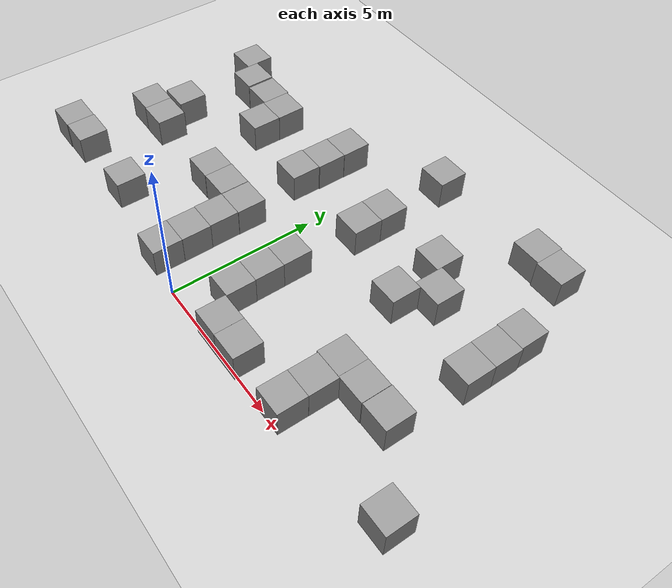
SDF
<sdf version="1.7">
 <world name="default">
  <model name="ground_plane">
   <static>1</static>
   <link name="link">
    <collision name="collision">
     <geometry><plane><normal>0 0 1</normal><size>100 100</size></plane></geometry>
     <surface>
      <contact><collide_bitmask>65535</collide_bitmask></contact>
      <friction><ode><mu>100</mu><mu2>50</mu2></ode></friction>
     </surface>
    </collision>
    <visual name="visual">
     <cast_shadows>0</cast_shadows>
     <geometry><plane><normal>0 0 1</normal><size>100 100</size></plane></geometry>
     <material>
      <script><uri>file://media/materials/scripts/gazebo.material</uri><name>Gazebo/Grey</name></script>
     </material>
    </visual>
   </link>
  </model>
  <model name="unit_box">
   <pose>-1.36003 0.443437 0.5 0 -0 -0.000708</pose>
   <link name="link">
    <inertial>
     <mass>1</mass>
     <inertia>
      <ixx>0.166667</ixx>
      <ixy>0</ixy>
      <ixz>0</ixz>
      <iyy>0.166667</iyy>
      <iyz>0</iyz>
      <izz>0.166667</izz>
     </inertia>
    </inertial>
    <collision name="collision"><geometry><box><size>1 1 1</size></box></geometry></collision>
    <visual name="visual">
     <geometry><box><size>1 1 1</size></box></geometry>
     <material>
      <script><name>Gazebo/Grey</name><uri>file://media/materials/scripts/gazebo.material</uri></script>
     </material>
    </visual>
   </link>
  </model>
  <model name="unit_box_0">
   <pose>-1.35693 1.44351 0.5 0 0 -0.00082</pose>
   <link name="link">
    <inertial>
     <mass>1</mass>
     <inertia>
      <ixx>0.166667</ixx>
      <ixy>0</ixy>
      <ixz>0</ixz>
      <iyy>0.166667</iyy>
      <iyz>0</iyz>
      <izz>0.166667</izz>
     </inertia>
    </inertial>
    <collision name="collision"><geometry><box><size>1 1 1</size></box></geometry></collision>
    <visual name="visual">
     <geometry><box><size>1 1 1</size></box></geometry>
     <material>
      <script><name>Gazebo/Grey</name><uri>file://media/materials/scripts/gazebo.material</uri></script>
     </material>
    </visual>
   </link>
  </model>
  <model name="unit_box_2">
   <pose>1.23113 1.42092 0.5 0 -0 0.002156</pose>
   <link name="link">
    <inertial>
     <mass>1</mass>
     <inertia>
      <ixx>0.166667</ixx>
      <ixy>0</ixy>
      <ixz>0</ixz>
      <iyy>0.166667</iyy>
      <iyz>0</iyz>
      <izz>0.166667</izz>
     </inertia>
    </inertial>
    <collision name="collision"><geometry><box><size>1 1 1</size></box></geometry></collision>
    <visual name="visual">
     <geometry><box><size>1 1 1</size></box></geometry>
     <material>
      <script><name>Gazebo/Grey</name><uri>file://media/materials/scripts/gazebo.material</uri></script>
     </material>
    </visual>
   </link>
  </model>
  <model name="unit_box_3">
   <pose>1.22122 2.42103 0.5 0 -0 0.002274</pose>
   <link name="link">
    <inertial>
     <mass>1</mass>
     <inertia>
      <ixx>0.166667</ixx>
      <ixy>0</ixy>
      <ixz>0</ixz>
      <iyy>0.166667</iyy>
      <iyz>0</iyz>
      <izz>0.166667</izz>
     </inertia>
    </inertial>
    <collision name="collision"><geometry><box><size>1 1 1</size></box></geometry></collision>
    <visual name="visual">
     <geometry><box><size>1 1 1</size></box></geometry>
     <material>
      <script><name>Gazebo/Grey</name><uri>file://media/materials/scripts/gazebo.material</uri></script>
     </material>
    </visual>
   </link>
  </model>
  <model name="unit_box_4">
   <pose>-1.37367 2.44354 0.5 0 0 -0.000802</pose>
   <link name="link">
    <inertial>
     <mass>1</mass>
     <inertia>
      <ixx>0.166667</ixx>
      <ixy>0</ixy>
      <ixz>0</ixz>
      <iyy>0.166667</iyy>
      <iyz>0</iyz>
      <izz>0.166667</izz>
     </inertia>
    </inertial>
    <collision name="collision"><geometry><box><size>1 1 1</size></box></geometry></collision>
    <visual name="visual">
     <geometry><box><size>1 1 1</size></box></geometry>
     <material>
      <script><name>Gazebo/Grey</name><uri>file://media/materials/scripts/gazebo.material</uri></script>
     </material>
    </visual>
   </link>
  </model>
  <model name="unit_box_5">
   <pose>-1.36173 3.44395 0.5 0 -0 3.4e-05</pose>
   <link name="link">
    <inertial>
     <mass>1</mass>
     <inertia>
      <ixx>0.166667</ixx>
      <ixy>0</ixy>
      <ixz>0</ixz>
      <iyy>0.166667</iyy>
      <iyz>0</iyz>
      <izz>0.166667</izz>
     </inertia>
    </inertial>
    <collision name="collision"><geometry><box><size>1 1 1</size></box></geometry></collision>
    <visual name="visual">
     <geometry><box><size>1 1 1</size></box></geometry>
     <material>
      <script><name>Gazebo/Grey</name><uri>file://media/materials/scripts/gazebo.material</uri></script>
     </material>
    </visual>
   </link>
  </model>
  <model name="unit_box_6">
   <pose>1.21714 3.42107 0.5 0 -0 0.002343</pose>
   <link name="link">
    <inertial>
     <mass>1</mass>
     <inertia>
      <ixx>0.166667</ixx>
      <ixy>0</ixy>
      <ixz>0</ixz>
      <iyy>0.166667</iyy>
      <iyz>0</iyz>
      <izz>0.166667</izz>
     </inertia>
    </inertial>
    <collision name="collision"><geometry><box><size>1 1 1</size></box></geometry></collision>
    <visual name="visual">
     <geometry><box><size>1 1 1</size></box></geometry>
     <material>
      <script><name>Gazebo/Grey</name><uri>file://media/materials/scripts/gazebo.material</uri></script>
     </material>
    </visual>
   </link>
  </model>
  <model name="unit_box_7">
   <pose>-2.37307 3.44102 0.5 0 0 -0.00042</pose>
   <link name="link">
    <inertial>
     <mass>1</mass>
     <inertia>
      <ixx>0.166667</ixx>
      <ixy>0</ixy>
      <ixz>0</ixz>
      <iyy>0.166667</iyy>
      <iyz>0</iyz>
      <izz>0.166667</izz>
     </inertia>
    </inertial>
    <collision name="collision"><geometry><box><size>1 1 1</size></box></geometry></collision>
    <visual name="visual">
     <geometry><box><size>1 1 1</size></box></geometry>
     <material>
      <script><name>Gazebo/Grey</name><uri>file://media/materials/scripts/gazebo.material</uri></script>
     </material>
    </visual>
   </link>
  </model>
  <model name="unit_box_8">
   <pose>-3.37308 3.4342 0.5 0 0 -0.000421</pose>
   <link name="link">
    <inertial>
     <mass>1</mass>
     <inertia>
      <ixx>0.166667</ixx>
      <ixy>0</ixy>
      <ixz>0</ixz>
      <iyy>0.166667</iyy>
      <iyz>0</iyz>
      <izz>0.166667</izz>
     </inertia>
    </inertial>
    <collision name="collision"><geometry><box><size>1 1 1</size></box></geometry></collision>
    <visual name="visual">
     <geometry><box><size>1 1 1</size></box></geometry>
     <material>
      <script><name>Gazebo/Grey</name><uri>file://media/materials/scripts/gazebo.material</uri></script>
     </material>
    </visual>
   </link>
  </model>
  <model name="unit_box_9">
   <pose>-4.56011 0.881902 0.5 0 0 -3.6e-05</pose>
   <link name="link">
    <inertial>
     <mass>1</mass>
     <inertia>
      <ixx>0.166667</ixx>
      <ixy>0</ixy>
      <ixz>0</ixz>
      <iyy>0.166667</iyy>
      <iyz>0</iyz>
      <izz>0.166667</izz>
     </inertia>
    </inertial>
    <collision name="collision"><geometry><box><size>1 1 1</size></box></geometry></collision>
    <visual name="visual">
     <geometry><box><size>1 1 1</size></box></geometry>
     <material>
      <script><name>Gazebo/Grey</name><uri>file://media/materials/scripts/gazebo.material</uri></script>
     </material>
    </visual>
   </link>
  </model>
  <model name="unit_box_17">
   <pose>2.18499 0.414407 0.5 0 -0 0.000729</pose>
   <link name="link">
    <inertial>
     <mass>1</mass>
     <inertia>
      <ixx>0.166667</ixx>
      <ixy>0</ixy>
      <ixz>0</ixz>
      <iyy>0.166667</iyy>
      <iyz>0</iyz>
      <izz>0.166667</izz>
     </inertia>
    </inertial>
    <collision name="collision"><geometry><box><size>1 1 1</size></box></geometry></collision>
    <visual name="visual">
     <geometry><box><size>1 1 1</size></box></geometry>
     <material>
      <script><name>Gazebo/Grey</name><uri>file://media/materials/scripts/gazebo.material</uri></script>
     </material>
    </visual>
   </link>
  </model>
  <model name="unit_box_18">
   <pose>3.18521 0.416601 0.5 0 -0 0.000765</pose>
   <link name="link">
    <inertial>
     <mass>1</mass>
     <inertia>
      <ixx>0.166667</ixx>
      <ixy>0</ixy>
      <ixz>0</ixz>
      <iyy>0.166667</iyy>
      <iyz>0</iyz>
      <izz>0.166667</izz>
     </inertia>
    </inertial>
    <collision name="collision"><geometry><box><size>1 1 1</size></box></geometry></collision>
    <visual name="visual">
     <geometry><box><size>1 1 1</size></box></geometry>
     <material>
      <script><name>Gazebo/Grey</name><uri>file://media/materials/scripts/gazebo.material</uri></script>
     </material>
    </visual>
   </link>
  </model>
  <model name="unit_box_19">
   <pose>5.28777 0.441785 0.5 -0 -0 -0.001052</pose>
   <link name="link">
    <inertial>
     <mass>1</mass>
     <inertia>
      <ixx>0.166667</ixx>
      <ixy>0</ixy>
      <ixz>0</ixz>
      <iyy>0.166667</iyy>
      <iyz>0</iyz>
      <izz>0.166667</izz>
     </inertia>
    </inertial>
    <collision name="collision"><geometry><box><size>1 1 1</size></box></geometry></collision>
    <visual name="visual">
     <geometry><box><size>1 1 1</size></box></geometry>
     <material>
      <script><name>Gazebo/Grey</name><uri>file://media/materials/scripts/gazebo.material</uri></script>
     </material>
    </visual>
   </link>
  </model>
  <model name="unit_box_20">
   <pose>5.29242 1.44192 0.5 0 -0 -0.001317</pose>
   <link name="link">
    <inertial>
     <mass>1</mass>
     <inertia>
      <ixx>0.166667</ixx>
      <ixy>0</ixy>
      <ixz>0</ixz>
      <iyy>0.166667</iyy>
      <iyz>0</iyz>
      <izz>0.166667</izz>
     </inertia>
    </inertial>
    <collision name="collision"><geometry><box><size>1 1 1</size></box></geometry></collision>
    <visual name="visual">
     <geometry><box><size>1 1 1</size></box></geometry>
     <material>
      <script><name>Gazebo/Grey</name><uri>file://media/materials/scripts/gazebo.material</uri></script>
     </material>
    </visual>
   </link>
  </model>
  <model name="unit_box_21">
   <pose>5.2392 2.44258 0.5 0 0 -0.000379</pose>
   <link name="link">
    <inertial>
     <mass>1</mass>
     <inertia>
      <ixx>0.166667</ixx>
      <ixy>0</ixy>
      <ixz>0</ixz>
      <iyy>0.166667</iyy>
      <iyz>0</iyz>
      <izz>0.166667</izz>
     </inertia>
    </inertial>
    <collision name="collision"><geometry><box><size>1 1 1</size></box></geometry></collision>
    <visual name="visual">
     <geometry><box><size>1 1 1</size></box></geometry>
     <material>
      <script><name>Gazebo/Grey</name><uri>file://media/materials/scripts/gazebo.material</uri></script>
     </material>
    </visual>
   </link>
  </model>
  <model name="unit_box_25">
   <pose>1.43258 5.91446 0.5 0 0 -0.000102</pose>
   <link name="link">
    <inertial>
     <mass>1</mass>
     <inertia>
      <ixx>0.166667</ixx>
      <ixy>0</ixy>
      <ixz>0</ixz>
      <iyy>0.166667</iyy>
      <iyz>0</iyz>
      <izz>0.166667</izz>
     </inertia>
    </inertial>
    <collision name="collision"><geometry><box><size>1 1 1</size></box></geometry></collision>
    <visual name="visual">
     <geometry><box><size>1 1 1</size></box></geometry>
     <material>
      <script><name>Gazebo/Grey</name><uri>file://media/materials/scripts/gazebo.material</uri></script>
     </material>
    </visual>
   </link>
  </model>
  <model name="unit_box_26">
   <pose>1.43557 6.91448 0.5 0 -0 -0.000102</pose>
   <link name="link">
    <inertial>
     <mass>1</mass>
     <inertia>
      <ixx>0.166667</ixx>
      <ixy>0</ixy>
      <ixz>0</ixz>
      <iyy>0.166667</iyy>
      <iyz>0</iyz>
      <izz>0.166667</izz>
     </inertia>
    </inertial>
    <collision name="collision"><geometry><box><size>1 1 1</size></box></geometry></collision>
    <visual name="visual">
     <geometry><box><size>1 1 1</size></box></geometry>
     <material>
      <script><name>Gazebo/Grey</name><uri>file://media/materials/scripts/gazebo.material</uri></script>
     </material>
    </visual>
   </link>
  </model>
  <model name="unit_box_27">
   <pose>6.23935 2.441 0.5 0 -0 -0.000676</pose>
   <link name="link">
    <inertial>
     <mass>1</mass>
     <inertia>
      <ixx>0.166667</ixx>
      <ixy>0</ixy>
      <ixz>0</ixz>
      <iyy>0.166667</iyy>
      <iyz>0</iyz>
      <izz>0.166667</izz>
     </inertia>
    </inertial>
    <collision name="collision"><geometry><box><size>1 1 1</size></box></geometry></collision>
    <visual name="visual">
     <geometry><box><size>1 1 1</size></box></geometry>
     <material>
      <script><name>Gazebo/Grey</name><uri>file://media/materials/scripts/gazebo.material</uri></script>
     </material>
    </visual>
   </link>
  </model>
  <model name="unit_box_31">
   <pose>-7.22315 0.837391 0.5 0 -0 0.000209</pose>
   <link name="link">
    <inertial>
     <mass>1</mass>
     <inertia>
      <ixx>0.166667</ixx>
      <ixy>0</ixy>
      <ixz>0</ixz>
      <iyy>0.166667</iyy>
      <iyz>0</iyz>
      <izz>0.166667</izz>
     </inertia>
    </inertial>
    <collision name="collision"><geometry><box><size>1 1 1</size></box></geometry></collision>
    <visual name="visual">
     <geometry><box><size>1 1 1</size></box></geometry>
     <material>
      <script><name>Gazebo/Grey</name><uri>file://media/materials/scripts/gazebo.material</uri></script>
     </material>
    </visual>
   </link>
  </model>
  <model name="unit_box_32">
   <pose>-8.22316 0.820551 0.5 0 -0 0.000208</pose>
   <link name="link">
    <inertial>
     <mass>1</mass>
     <inertia>
      <ixx>0.166667</ixx>
      <ixy>0</ixy>
      <ixz>0</ixz>
      <iyy>0.166667</iyy>
      <iyz>0</iyz>
      <izz>0.166667</izz>
     </inertia>
    </inertial>
    <collision name="collision"><geometry><box><size>1 1 1</size></box></geometry></collision>
    <visual name="visual">
     <geometry><box><size>1 1 1</size></box></geometry>
     <material>
      <script><name>Gazebo/Grey</name><uri>file://media/materials/scripts/gazebo.material</uri></script>
     </material>
    </visual>
   </link>
  </model>
  <model name="unit_box_33">
   <pose>-4.39555 6.00856 0.5 0 0 -0.000284</pose>
   <link name="link">
    <inertial>
     <mass>1</mass>
     <inertia>
      <ixx>0.166667</ixx>
      <ixy>0</ixy>
      <ixz>0</ixz>
      <iyy>0.166667</iyy>
      <iyz>0</iyz>
      <izz>0.166667</izz>
     </inertia>
    </inertial>
    <collision name="collision"><geometry><box><size>1 1 1</size></box></geometry></collision>
    <visual name="visual">
     <geometry><box><size>1 1 1</size></box></geometry>
     <material>
      <script><name>Gazebo/Grey</name><uri>file://media/materials/scripts/gazebo.material</uri></script>
     </material>
    </visual>
   </link>
  </model>
  <model name="unit_box_34">
   <pose>-4.38813 7.00859 0.5 0 -0 -0.000299</pose>
   <link name="link">
    <inertial>
     <mass>1</mass>
     <inertia>
      <ixx>0.166667</ixx>
      <ixy>0</ixy>
      <ixz>0</ixz>
      <iyy>0.166667</iyy>
      <iyz>0</iyz>
      <izz>0.166667</izz>
     </inertia>
    </inertial>
    <collision name="collision"><geometry><box><size>1 1 1</size></box></geometry></collision>
    <visual name="visual">
     <geometry><box><size>1 1 1</size></box></geometry>
     <material>
      <script><name>Gazebo/Grey</name><uri>file://media/materials/scripts/gazebo.material</uri></script>
     </material>
    </visual>
   </link>
  </model>
  <model name="unit_box_35">
   <pose>-6.5052 3.45741 0.5 0 0 -0.000661</pose>
   <link name="link">
    <inertial>
     <mass>1</mass>
     <inertia>
      <ixx>0.166667</ixx>
      <ixy>0</ixy>
      <ixz>0</ixz>
      <iyy>0.166667</iyy>
      <iyz>0</iyz>
      <izz>0.166667</izz>
     </inertia>
    </inertial>
    <collision name="collision"><geometry><box><size>1 1 1</size></box></geometry></collision>
    <visual name="visual">
     <geometry><box><size>1 1 1</size></box></geometry>
     <material>
      <script><name>Gazebo/Grey</name><uri>file://media/materials/scripts/gazebo.material</uri></script>
     </material>
    </visual>
   </link>
  </model>
  <model name="unit_box_36">
   <pose>-7.50519 3.47135 0.5 -0 -0 -0.000661</pose>
   <link name="link">
    <inertial>
     <mass>1</mass>
     <inertia>
      <ixx>0.166667</ixx>
      <ixy>0</ixy>
      <ixz>0</ixz>
      <iyy>0.166667</iyy>
      <iyz>0</iyz>
      <izz>0.166667</izz>
     </inertia>
    </inertial>
    <collision name="collision"><geometry><box><size>1 1 1</size></box></geometry></collision>
    <visual name="visual">
     <geometry><box><size>1 1 1</size></box></geometry>
     <material>
      <script><name>Gazebo/Grey</name><uri>file://media/materials/scripts/gazebo.material</uri></script>
     </material>
    </visual>
   </link>
  </model>
  <model name="unit_box_37">
   <pose>-6.95101 4.55843 0.5 0 -0 0</pose>
   <link name="link">
    <inertial>
     <mass>1</mass>
     <inertia>
      <ixx>0.166667</ixx>
      <ixy>0</ixy>
      <ixz>0</ixz>
      <iyy>0.166667</iyy>
      <iyz>0</iyz>
      <izz>0.166667</izz>
     </inertia>
    </inertial>
    <collision name="collision"><geometry><box><size>1 1 1</size></box></geometry></collision>
    <visual name="visual">
     <geometry><box><size>1 1 1</size></box></geometry>
     <material>
      <script><name>Gazebo/Grey</name><uri>file://media/materials/scripts/gazebo.material</uri></script>
     </material>
    </visual>
   </link>
  </model>
  <model name="unit_box_38">
   <pose>-1.61922 5.72429 0.5 0 -0 -0.000993</pose>
   <link name="link">
    <inertial>
     <mass>1</mass>
     <inertia>
      <ixx>0.166667</ixx>
      <ixy>0</ixy>
      <ixz>0</ixz>
      <iyy>0.166667</iyy>
      <iyz>0</iyz>
      <izz>0.166667</izz>
     </inertia>
    </inertial>
    <collision name="collision"><geometry><box><size>1 1 1</size></box></geometry></collision>
    <visual name="visual">
     <geometry><box><size>1 1 1</size></box></geometry>
     <material>
      <script><name>Gazebo/Grey</name><uri>file://media/materials/scripts/gazebo.material</uri></script>
     </material>
    </visual>
   </link>
  </model>
  <model name="unit_box_39">
   <pose>-1.58965 6.7246 0.499995 0 -1e-05 -0.000437</pose>
   <link name="link">
    <inertial>
     <mass>1</mass>
     <inertia>
      <ixx>0.166667</ixx>
      <ixy>0</ixy>
      <ixz>0</ixz>
      <iyy>0.166667</iyy>
      <iyz>0</iyz>
      <izz>0.166667</izz>
     </inertia>
    </inertial>
    <collision name="collision"><geometry><box><size>1 1 1</size></box></geometry></collision>
    <visual name="visual">
     <geometry><box><size>1 1 1</size></box></geometry>
     <material>
      <script><name>Gazebo/Grey</name><uri>file://media/materials/scripts/gazebo.material</uri></script>
     </material>
    </visual>
   </link>
  </model>
  <model name="unit_box_40">
   <pose>-1.58047 7.7246 0.5 0 -0 -0.000435</pose>
   <link name="link">
    <inertial>
     <mass>1</mass>
     <inertia>
      <ixx>0.166667</ixx>
      <ixy>0</ixy>
      <ixz>0</ixz>
      <iyy>0.166667</iyy>
      <iyz>0</iyz>
      <izz>0.166667</izz>
     </inertia>
    </inertial>
    <collision name="collision"><geometry><box><size>1 1 1</size></box></geometry></collision>
    <visual name="visual">
     <geometry><box><size>1 1 1</size></box></geometry>
     <material>
      <script><name>Gazebo/Grey</name><uri>file://media/materials/scripts/gazebo.material</uri></script>
     </material>
    </visual>
   </link>
  </model>
  <model name="unit_box_56">
   <pose>-5.38818 7.05248 0.5 0 0 -0.000436</pose>
   <link name="link">
    <inertial>
     <mass>1</mass>
     <inertia>
      <ixx>0.166667</ixx>
      <ixy>0</ixy>
      <ixz>0</ixz>
      <iyy>0.166667</iyy>
      <iyz>0</iyz>
      <izz>0.166667</izz>
     </inertia>
    </inertial>
    <collision name="collision"><geometry><box><size>1 1 1</size></box></geometry></collision>
    <visual name="visual">
     <geometry><box><size>1 1 1</size></box></geometry>
     <material>
      <script><name>Gazebo/Grey</name><uri>file://media/materials/scripts/gazebo.material</uri></script>
     </material>
    </visual>
   </link>
  </model>
  <model name="unit_box_57">
   <pose>-6.44933 7.08314 0.5 0 -0 -0.001087</pose>
   <link name="link">
    <inertial>
     <mass>1</mass>
     <inertia>
      <ixx>0.166667</ixx>
      <ixy>0</ixy>
      <ixz>0</ixz>
      <iyy>0.166667</iyy>
      <iyz>0</iyz>
      <izz>0.166667</izz>
     </inertia>
    </inertial>
    <collision name="collision"><geometry><box><size>1 1 1</size></box></geometry></collision>
    <visual name="visual">
     <geometry><box><size>1 1 1</size></box></geometry>
     <material>
      <script><name>Gazebo/Grey</name><uri>file://media/materials/scripts/gazebo.material</uri></script>
     </material>
    </visual>
   </link>
  </model>
  <model name="unit_box_64">
   <pose>7.39961 6.08546 0.5 0 -0 0.000216</pose>
   <link name="link">
    <inertial>
     <mass>1</mass>
     <inertia>
      <ixx>0.166667</ixx>
      <ixy>0</ixy>
      <ixz>0</ixz>
      <iyy>0.166667</iyy>
      <iyz>0</iyz>
      <izz>0.166667</izz>
     </inertia>
    </inertial>
    <collision name="collision"><geometry><box><size>1 1 1</size></box></geometry></collision>
    <visual name="visual">
     <geometry><box><size>1 1 1</size></box></geometry>
     <material>
      <script><name>Gazebo/Grey</name><uri>file://media/materials/scripts/gazebo.material</uri></script>
     </material>
    </visual>
   </link>
  </model>
  <model name="unit_box_65">
   <pose>7.37021 7.08553 0.5 0 -0 0.000262</pose>
   <link name="link">
    <inertial>
     <mass>1</mass>
     <inertia>
      <ixx>0.166667</ixx>
      <ixy>0</ixy>
      <ixz>0</ixz>
      <iyy>0.166667</iyy>
      <iyz>0</iyz>
      <izz>0.166667</izz>
     </inertia>
    </inertial>
    <collision name="collision"><geometry><box><size>1 1 1</size></box></geometry></collision>
    <visual name="visual">
     <geometry><box><size>1 1 1</size></box></geometry>
     <material>
      <script><name>Gazebo/Grey</name><uri>file://media/materials/scripts/gazebo.material</uri></script>
     </material>
    </visual>
   </link>
  </model>
  <model name="unit_box_66">
   <pose>7.40237 5.0853 0.5 0 -0 0.000179</pose>
   <link name="link">
    <inertial>
     <mass>1</mass>
     <inertia>
      <ixx>0.166667</ixx>
      <ixy>0</ixy>
      <ixz>0</ixz>
      <iyy>0.166667</iyy>
      <iyz>0</iyz>
      <izz>0.166667</izz>
     </inertia>
    </inertial>
    <collision name="collision"><geometry><box><size>1 1 1</size></box></geometry></collision>
    <visual name="visual">
     <geometry><box><size>1 1 1</size></box></geometry>
     <material>
      <script><name>Gazebo/Grey</name><uri>file://media/materials/scripts/gazebo.material</uri></script>
     </material>
    </visual>
   </link>
  </model>
  <model name="unit_box_67">
   <pose>7.24951 2.45354 0.5 0 -0 0</pose>
   <link name="link">
    <inertial>
     <mass>1</mass>
     <inertia>
      <ixx>0.166667</ixx>
      <ixy>0</ixy>
      <ixz>0</ixz>
      <iyy>0.166667</iyy>
      <iyz>0</iyz>
      <izz>0.166667</izz>
     </inertia>
    </inertial>
    <collision name="collision"><geometry><box><size>1 1 1</size></box></geometry></collision>
    <visual name="visual">
     <geometry><box><size>1 1 1</size></box></geometry>
     <material>
      <script><name>Gazebo/Grey</name><uri>file://media/materials/scripts/gazebo.material</uri></script>
     </material>
    </visual>
   </link>
  </model>
  <model name="unit_box_68">
   <pose>5.40472 9.63392 0.5 0 0 -0.004294</pose>
   <link name="link">
    <inertial>
     <mass>1</mass>
     <inertia>
      <ixx>0.166667</ixx>
      <ixy>0</ixy>
      <ixz>0</ixz>
      <iyy>0.166667</iyy>
      <iyz>0</iyz>
      <izz>0.166667</izz>
     </inertia>
    </inertial>
    <collision name="collision"><geometry><box><size>1 1 1</size></box></geometry></collision>
    <visual name="visual">
     <geometry><box><size>1 1 1</size></box></geometry>
     <material>
      <script><name>Gazebo/Grey</name><uri>file://media/materials/scripts/gazebo.material</uri></script>
     </material>
    </visual>
   </link>
  </model>
  <model name="unit_box_69">
   <pose>6.40453 9.58394 0.5 0 0 -0.004295</pose>
   <link name="link">
    <inertial>
     <mass>1</mass>
     <inertia>
      <ixx>0.166667</ixx>
      <ixy>0</ixy>
      <ixz>0</ixz>
      <iyy>0.166667</iyy>
      <iyz>0</iyz>
      <izz>0.166667</izz>
     </inertia>
    </inertial>
    <collision name="collision"><geometry><box><size>1 1 1</size></box></geometry></collision>
    <visual name="visual">
     <geometry><box><size>1 1 1</size></box></geometry>
     <material>
      <script><name>Gazebo/Grey</name><uri>file://media/materials/scripts/gazebo.material</uri></script>
     </material>
    </visual>
   </link>
  </model>
  <model name="unit_box_71">
   <pose>9.40484 0.729532 0.5 0 -0 0</pose>
   <link name="link">
    <inertial>
     <mass>1</mass>
     <inertia>
      <ixx>0.166667</ixx>
      <ixy>0</ixy>
      <ixz>0</ixz>
      <iyy>0.166667</iyy>
      <iyz>0</iyz>
      <izz>0.166667</izz>
     </inertia>
    </inertial>
    <collision name="collision"><geometry><box><size>1 1 1</size></box></geometry></collision>
    <visual name="visual">
     <geometry><box><size>1 1 1</size></box></geometry>
     <material>
      <script><name>Gazebo/Grey</name><uri>file://media/materials/scripts/gazebo.material</uri></script>
     </material>
    </visual>
   </link>
  </model>
  <model name="unit_box_80">
   <pose>-7.44869 7.68978 0.5 0 -0 -0.001085</pose>
   <link name="link">
    <inertial>
     <mass>1</mass>
     <inertia>
      <ixx>0.166667</ixx>
      <ixy>0</ixy>
      <ixz>0</ixz>
      <iyy>0.166667</iyy>
      <iyz>0</iyz>
      <izz>0.166667</izz>
     </inertia>
    </inertial>
    <collision name="collision"><geometry><box><size>1 1 1</size></box></geometry></collision>
    <visual name="visual">
     <geometry><box><size>1 1 1</size></box></geometry>
     <material>
      <script><name>Gazebo/Grey</name><uri>file://media/materials/scripts/gazebo.material</uri></script>
     </material>
    </visual>
   </link>
  </model>
  <model name="unit_box_83">
   <pose>1.33736 9.4472 0.5 0 -0 0</pose>
   <link name="link">
    <inertial>
     <mass>1</mass>
     <inertia>
      <ixx>0.166667</ixx>
      <ixy>0</ixy>
      <ixz>0</ixz>
      <iyy>0.166667</iyy>
      <iyz>0</iyz>
      <izz>0.166667</izz>
     </inertia>
    </inertial>
    <collision name="collision"><geometry><box><size>1 1 1</size></box></geometry></collision>
    <visual name="visual">
     <geometry><box><size>1 1 1</size></box></geometry>
     <material>
      <script><name>Gazebo/Grey</name><uri>file://media/materials/scripts/gazebo.material</uri></script>
     </material>
    </visual>
   </link>
  </model>
  <model name="unit_box_22">
   <pose>4.14677 5.18576 0.5 0 0 -0.001636</pose>
   <link name="link">
    <inertial>
     <mass>1</mass>
     <inertia>
      <ixx>0.166667</ixx>
      <ixy>0</ixy>
      <ixz>0</ixz>
      <iyy>0.166667</iyy>
      <iyz>0</iyz>
      <izz>0.166667</izz>
     </inertia>
    </inertial>
    <collision name="collision"><geometry><box><size>1 1 1</size></box></geometry></collision>
    <visual name="visual">
     <geometry><box><size>1 1 1</size></box></geometry>
     <material>
      <script><name>Gazebo/Grey</name><uri>file://media/materials/scripts/gazebo.material</uri></script>
     </material>
    </visual>
   </link>
  </model>
  <model name="unit_box_23">
   <pose>4.92221 6.18243 0.5 0 0 -0.009248</pose>
   <link name="link">
    <inertial>
     <mass>1</mass>
     <inertia>
      <ixx>0.166667</ixx>
      <ixy>0</ixy>
      <ixz>0</ixz>
      <iyy>0.166667</iyy>
      <iyz>0</iyz>
      <izz>0.166667</izz>
     </inertia>
    </inertial>
    <collision name="collision"><geometry><box><size>1 1 1</size></box></geometry></collision>
    <visual name="visual">
     <geometry><box><size>1 1 1</size></box></geometry>
     <material>
      <script><name>Gazebo/Grey</name><uri>file://media/materials/scripts/gazebo.material</uri></script>
     </material>
    </visual>
   </link>
  </model>
  <model name="unit_box_24">
   <pose>3.92945 7.02524 0.5 0 -0 -0.009096</pose>
   <link name="link">
    <inertial>
     <mass>1</mass>
     <inertia>
      <ixx>0.166667</ixx>
      <ixy>0</ixy>
      <ixz>0</ixz>
      <iyy>0.166667</iyy>
      <iyz>0</iyz>
      <izz>0.166667</izz>
     </inertia>
    </inertial>
    <collision name="collision"><geometry><box><size>1 1 1</size></box></geometry></collision>
    <visual name="visual">
     <geometry><box><size>1 1 1</size></box></geometry>
     <material>
      <script><name>Gazebo/Grey</name><uri>file://media/materials/scripts/gazebo.material</uri></script>
     </material>
    </visual>
   </link>
  </model>
 </world>
</sdf>
